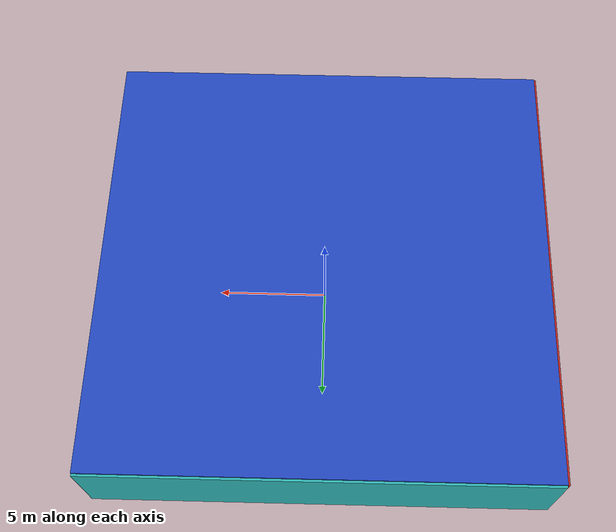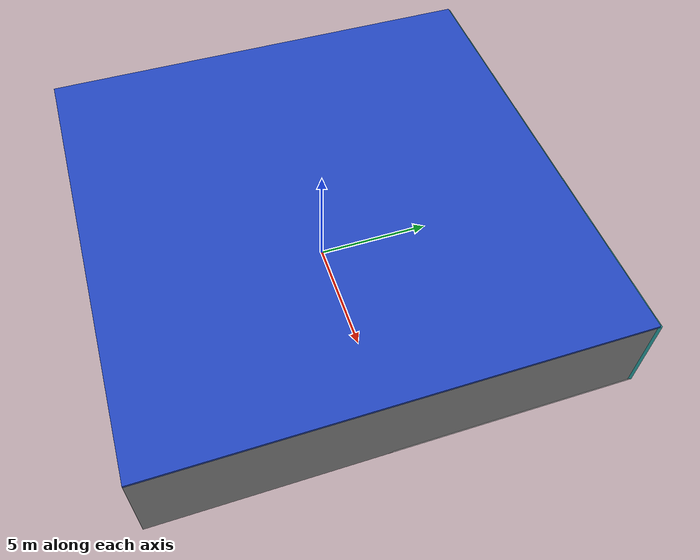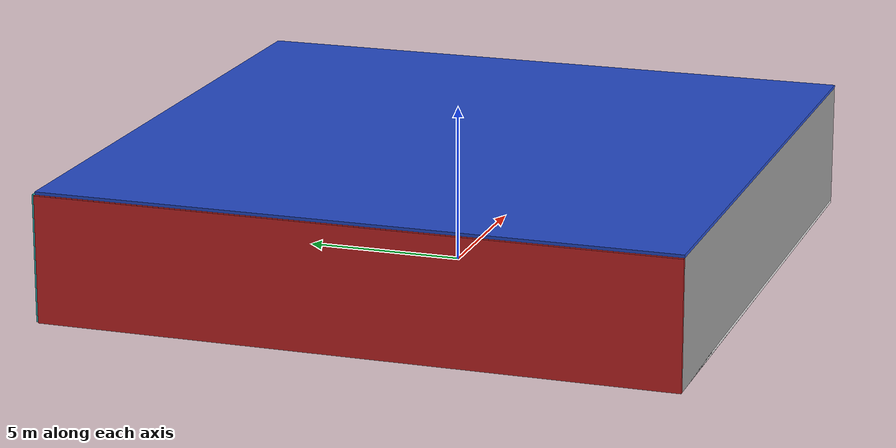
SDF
<sdf version="1.4">
 <world name="default">
  <physics type="ode">
   <max_step_size>0.001</max_step_size>
   <real_time_factor>1</real_time_factor>
   <real_time_update_rate>1000</real_time_update_rate>
   <gravity>0 0 -9.8</gravity>
  </physics>
  <scene><ambient>0.4 0.4 0.4 1</ambient><background>0.7 0.7 0.7 1</background><shadows>1</shadows></scene>
  <model name="Surrounding">
   <static>1</static>
   <link name="Ceiling">
    <collision name="Ceiling_Collision"><geometry><box><size>20 20 0.1</size></box></geometry></collision>
    <visual name="Ceiling_Visual">
     <geometry><box><size>20 20 0.1</size></box></geometry>
     <material>
      <script><uri>file://media/materials/scripts/gazebo.material</uri><name>Gazebo/Blue</name></script>
     </material>
    </visual>
    <pose>0 0 4.05 0 0 0</pose>
   </link>
   <link name="Wall_South">
    <collision name="Wall_South_Collision">
     <geometry><box><size>20 0 4</size></box></geometry>
     <pose>0 0 2 0 -0 0</pose>
    </collision>
    <visual name="Wall_South_Visual">
     <pose>0 0 2 0 -0 0</pose>
     <geometry><box><size>20 0 4</size></box></geometry>
     <material>
      <script><uri>file://media/materials/scripts/gazebo.material</uri><name>Gazebo/GreyGradientSky</name></script>
     </material>
    </visual>
    <velocity_decay><linear>0</linear><angular>0</angular></velocity_decay>
    <pose>0 -10 0 0 -0 0</pose>
   </link>
   <link name="Wall_East">
    <collision name="Wall_21_Collision">
     <geometry><box><size>20 0 4</size></box></geometry>
     <pose>0 0 2 0 -0 0</pose>
    </collision>
    <visual name="Wall_21_Visual">
     <pose>0 0 2 0 -0 0</pose>
     <geometry><box><size>20 0 4</size></box></geometry>
     <material>
      <script><uri>file://media/materials/scripts/gazebo.material</uri><name>Gazebo/GreyGradientSky</name></script>
     </material>
    </visual>
    <velocity_decay><linear>0</linear><angular>0</angular></velocity_decay>
    <pose>10 0 0 0 -0 1.5708</pose>
   </link>
   <link name="Wall_North">
    <collision name="Wall_22_Collision">
     <geometry><box><size>20 0.2 4</size></box></geometry>
     <pose>0 0 2 0 -0 0</pose>
    </collision>
    <visual name="Wall_22_Visual">
     <pose>0 0 2 0 -0 0</pose>
     <geometry><box><size>20 0.2 4</size></box></geometry>
     <material>
      <script><uri>file://media/materials/scripts/gazebo.material</uri><name>Gazebo/TurquoiseGlow</name></script>
     </material>
    </visual>
    <velocity_decay><linear>0</linear><angular>0</angular></velocity_decay>
    <pose>0 10 0 0 -0 0</pose>
   </link>
   <link name="Wall_West">
    <collision name="Wall_23_Collision">
     <geometry><box><size>20 0.2 4</size></box></geometry>
     <pose>0 0 2 0 -0 0</pose>
    </collision>
    <visual name="Wall_23_Visual">
     <pose>0 0 2 0 -0 0</pose>
     <geometry><box><size>20 0.2 4</size></box></geometry>
     <material>
      <script><uri>file://media/materials/scripts/gazebo.material</uri><name>Gazebo/Red</name></script>
     </material>
    </visual>
    <velocity_decay><linear>0</linear><angular>0</angular></velocity_decay>
    <pose>-10 0 0 0 0 -1.5708</pose>
   </link>
   <link name="Ground_link">
    <collision name="collision">
     <pose>0 0 .05 0 -0 0</pose>
     <geometry><box><size>20 20 0.1</size></box></geometry>
    </collision>
    <visual name="visual">
     <pose>0 0 .05 0 -0 0</pose>
     <geometry><box><size>20 20 0.1</size></box></geometry>
     <material>
      <script><uri>file://media/materials/scripts/gazebo.material</uri><name>Gazebo/White</name></script>
     </material>
    </visual>
   </link>
   <static>1</static>
  </model>
  <spherical_coordinates>
   <surface_model>EARTH_WGS84</surface_model>
   <latitude_deg>0</latitude_deg>
   <longitude_deg>0</longitude_deg>
   <elevation>0</elevation>
   <heading_deg>0</heading_deg>
  </spherical_coordinates>
  <light name="lightball_0" type="diffuse">
   <diffuse>0.8 0.8 0.8 1</diffuse>
   <specular>0.2 0.2 0.2 1</specular>
   <attenuation>
    <range>100</range>
    <constant>0.7</constant>
    <linear>0.01</linear>
    <quadratic>0.001</quadratic>
   </attenuation>
   <direction>-0.5 0.1 -0.9</direction>
   <pose>-3.80927773171 9.0192634858 3.65006576359 0 0 0</pose>
  </light>
  <light name="lightball_1" type="diffuse">
   <diffuse>0.8 0.8 0.8 1</diffuse>
   <specular>0.2 0.2 0.2 1</specular>
   <attenuation>
    <range>100</range>
    <constant>0.7</constant>
    <linear>0.01</linear>
    <quadratic>0.001</quadratic>
   </attenuation>
   <direction>-0.5 0.1 -0.9</direction>
   <pose>-3.95488457179 1.50474404315 3.0054138231 0 0 0</pose>
  </light>
  <light name="lightball_2" type="diffuse">
   <diffuse>0.8 0.8 0.8 1</diffuse>
   <specular>0.2 0.2 0.2 1</specular>
   <attenuation>
    <range>100</range>
    <constant>0.7</constant>
    <linear>0.01</linear>
    <quadratic>0.001</quadratic>
   </attenuation>
   <direction>-0.5 0.1 -0.9</direction>
   <pose>2.98575944534 1.67410482037 1.82070802243 0 0 0</pose>
  </light>
  <light name="lightball_3" type="diffuse">
   <diffuse>0.8 0.8 0.8 1</diffuse>
   <specular>0.2 0.2 0.2 1</specular>
   <attenuation>
    <range>100</range>
    <constant>0.7</constant>
    <linear>0.01</linear>
    <quadratic>0.001</quadratic>
   </attenuation>
   <direction>-0.5 0.1 -0.9</direction>
   <pose>3.24314766654 -2.00993431041 1.66444156501 0 0 0</pose>
  </light>
  <light name="lightball_4" type="diffuse">
   <diffuse>0.8 0.8 0.8 1</diffuse>
   <specular>0.2 0.2 0.2 1</specular>
   <attenuation>
    <range>100</range>
    <constant>0.7</constant>
    <linear>0.01</linear>
    <quadratic>0.001</quadratic>
   </attenuation>
   <direction>-0.5 0.1 -0.9</direction>
   <pose>-0.289045423153 -0.0627419035412 3.65104391533 0 0 0</pose>
  </light>
  <light name="lightball_5" type="diffuse">
   <diffuse>0.8 0.8 0.8 1</diffuse>
   <specular>0.2 0.2 0.2 1</specular>
   <attenuation>
    <range>100</range>
    <constant>0.7</constant>
    <linear>0.01</linear>
    <quadratic>0.001</quadratic>
   </attenuation>
   <direction>-0.5 0.1 -0.9</direction>
   <pose>-5.67931835517 -6.06807773646 2.91694999969 0 0 0</pose>
  </light>
  <light name="lightball_6" type="diffuse">
   <diffuse>0.8 0.8 0.8 1</diffuse>
   <specular>0.2 0.2 0.2 1</specular>
   <attenuation>
    <range>100</range>
    <constant>0.7</constant>
    <linear>0.01</linear>
    <quadratic>0.001</quadratic>
   </attenuation>
   <direction>-0.5 0.1 -0.9</direction>
   <pose>-1.31427408341 -5.79268873396 3.41324441044 0 0 0</pose>
  </light>
  <light name="lightball_7" type="diffuse">
   <diffuse>0.8 0.8 0.8 1</diffuse>
   <specular>0.2 0.2 0.2 1</specular>
   <attenuation>
    <range>100</range>
    <constant>0.7</constant>
    <linear>0.01</linear>
    <quadratic>0.001</quadratic>
   </attenuation>
   <direction>-0.5 0.1 -0.9</direction>
   <pose>8.6844890289 7.4631640924 3.74902442963 0 0 0</pose>
  </light>
  <include><uri>model://cabinet</uri><pose>-3.7973280554 -8.4684834539 0 0 0 2.11986507021</pose></include>
  <include><uri>model://cabinet</uri><pose>-5.41382149062 -1.59377155311 0 0 0 1.52351988177</pose></include>
  <include>
   <uri>model://construction_cone</uri>
   <pose>1.13877567451 3.32344278619 0 0 0 1.86791139054</pose>
  </include>
  <include>
   <uri>model://construction_cone</uri>
   <pose>5.28625051507 -7.95656110379 0 0 0 0.882731132048</pose>
  </include>
  <include><uri>model://cabinet</uri><pose>4.53964413804 -4.59345138025 0 0 0 1.03392304717</pose></include>
 </world>
</sdf>

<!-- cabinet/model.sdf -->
<sdf version="1.5">
  <model name="cabinet">
    <static>true</static>
    <link name="cabinet_bottom_plate">
      <inertial>
        <pose>0 0 -1 0 0 0</pose>
        <inertia>
          <ixx>2.050000</ixx>
          <ixy>0</ixy>
          <ixz>0</ixz>
          <iyy>2.050000</iyy>
          <iyz>0</iyz>
          <izz>2.050000</izz>
        </inertia>
        <mass>25.000000</mass>
      </inertial>
      <collision name="cabinet_bottom_plate_geom">
        <pose>0 0 0.010000 0 0 0</pose>
        <geometry>
          <box>
            <size>0.450000 0.450000 0.020000</size>
          </box>
        </geometry>
      </collision>
      <visual name="cabinet_bottom_plate_geom_visual">
        <pose>0 0 0.010000 0 0 0</pose>
        <geometry>
          <box>
            <size>0.450000 0.450000 0.020000</size>
          </box>
        </geometry>
        <material>
          <script>
            <uri>model://media/materials/scripts/gazebo.material</uri>
            <name>Gazebo/Wood</name>
          </script>
        </material>
      </visual>
      <collision name="cabinet_bottom_plate_geom_cabinet_back_plate">
        <pose>0.235000 0 0.510000 0 0 0</pose>
        <geometry>
          <box>
            <size>0.020000 0.450000 1.020000</size>
          </box>
        </geometry>
      </collision>
      <visual name="cabinet_bottom_plate_geom_cabinet_back_plate_visual">
        <pose>0.235000 0 0.510000 0 0 0</pose>
        <geometry>
          <box>
            <size>0.020000 0.450000 1.020000</size>
          </box>
        </geometry>
        <material>
          <script>
            <uri>model://media/materials/scripts/gazebo.material</uri>
            <name>Gazebo/Wood</name>
          </script>
        </material>
      </visual>
      <collision name="cabinet_bottom_plate_geom_cabinet_left_plate">
        <pose>0 0.235000 0.510000 0 0 0</pose>
        <geometry>
          <box>
            <size>0.450000 0.020000 1.020000</size>
          </box>
        </geometry>
      </collision>
      <visual name="cabinet_bottom_plate_geom_cabinet_left_plate_visual">
        <pose>0 0.235000 0.510000 0 0 0</pose>
        <geometry>
          <box>
            <size>0.450000 0.020000 1.020000</size>
          </box>
        </geometry>
        <material>
          <script>
            <uri>model://media/materials/scripts/gazebo.material</uri>
            <name>Gazebo/Wood</name>
          </script>
        </material>
      </visual>
      <collision name="cabinet_bottom_plate_geom_cabinet_middle_plate">
        <pose>0 0 0.510000 0 0 0</pose>
        <geometry>
          <box>
            <size>0.450000 0.450000 0.020000</size>
          </box>
        </geometry>
      </collision>
      <visual name="cabinet_bottom_plate_geom_cabinet_middle_plate_visual">
        <pose>0 0 0.510000 0 0 0</pose>
        <geometry>
          <box>
            <size>0.450000 0.450000 0.020000</size>
          </box>
        </geometry>
        <material>
          <script>
            <uri>model://media/materials/scripts/gazebo.material</uri>
            <name>Gazebo/Wood</name>
          </script>
        </material>
      </visual>
      <collision name="cabinet_bottom_plate_geom_cabinet_right_plate">
        <pose>0 -0.235000 0.510000 0 0 0</pose>
        <geometry>
          <box>
            <size>0.450000 0.020000 1.020000</size>
          </box>
        </geometry>
      </collision>
      <visual name="cabinet_bottom_plate_geom_cabinet_right_plate_visual">
        <pose>0 -0.235000 0.510000 0 0 0</pose>
        <geometry>
          <box>
            <size>0.450000 0.020000 1.020000</size>
          </box>
        </geometry>
        <material>
          <script>
            <uri>model://media/materials/scripts/gazebo.material</uri>
            <name>Gazebo/Wood</name>
          </script>
        </material>
      </visual>
      <collision name="cabinet_bottom_plate_geom_cabinet_top_plate">
        <pose>0 0 1.010000 0 0 0</pose>
        <geometry>
          <box>
            <size>0.450000 0.450000 0.020000</size>
          </box>
        </geometry>
      </collision>
      <visual name="cabinet_bottom_plate_geom_cabinet_top_plate_visual">
        <pose>0 0 1.010000 0 0 0</pose>
        <geometry>
          <box>
            <size>0.450000 0.450000 0.020000</size>
          </box>
        </geometry>
        <material>
          <script>
            <uri>model://media/materials/scripts/gazebo.material</uri>
            <name>Gazebo/Wood</name>
          </script>
        </material>
      </visual>
    </link>
  </model>
</sdf>

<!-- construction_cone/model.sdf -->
<sdf version="1.5">
  <model name="Construction Cone">
    <link name="link">
      <collision name="collision">
        <geometry>
          <mesh>
            <scale>10 10 10</scale>
            <uri>file://isr-testbed/construction_cone/meshes/construction_cone.dae</uri>
          </mesh>
        </geometry>
      </collision>
      <visual name="visual">
        <geometry>
          <mesh>
            <scale>10 10 10</scale>
            <uri>file://isr-testbed/construction_cone/meshes/construction_cone.dae</uri>
          </mesh>
        </geometry>
      </visual>
    </link>
  </model>
</sdf>
